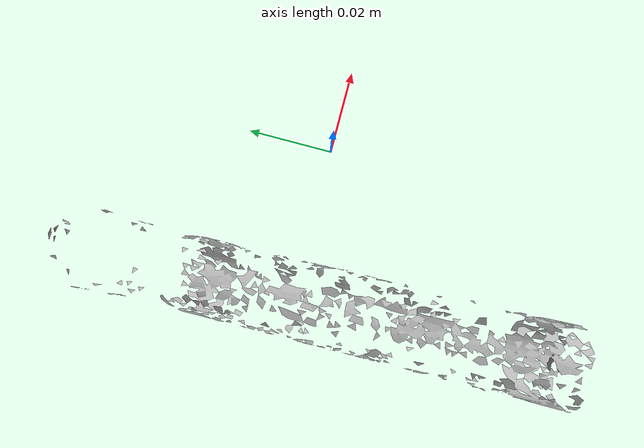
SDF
<?xml version="1.0" ?>
<sdf version="1.4">
  <model name='ycb_040_large_marker'>
    <link name='body'>
      <inertial>
        <mass>0.0158</mass>
        <pose>-0.0357251247286 -0.00788077074591 0.00901829689479 0 0 0</pose>
        <inertia>
          <ixx>1.78585189017e-05</ixx>
          <ixy>3.58846559519e-07</ixy>
          <ixz>-9.83671543863e-10</ixz>
          <iyy>6.20531152411e-07</iyy>
          <iyz>-9.22527678353e-09</iyz>
          <izz>1.78666659836e-05</izz>
        </inertia>
      </inertial>
      <visual name='ycb_040_large_marker_visual'>
        <pose>0 0 0 0 0 0</pose>
        <geometry>
          <mesh>
            <uri>model://ycb_040_large_marker/meshes/textured.dae</uri>
          </mesh>
        </geometry>
      </visual>
      <collision name='ycb_040_large_marker_collision'>
        <pose>0 0 0 0 0 0</pose>
        <geometry>
          <mesh>
            <uri>model://ycb_040_large_marker/meshes/nontextured.stl</uri>
          </mesh>
        </geometry>
        <max_contacts>10</max_contacts>
      </collision>
    </link>
  </model>
</sdf>
